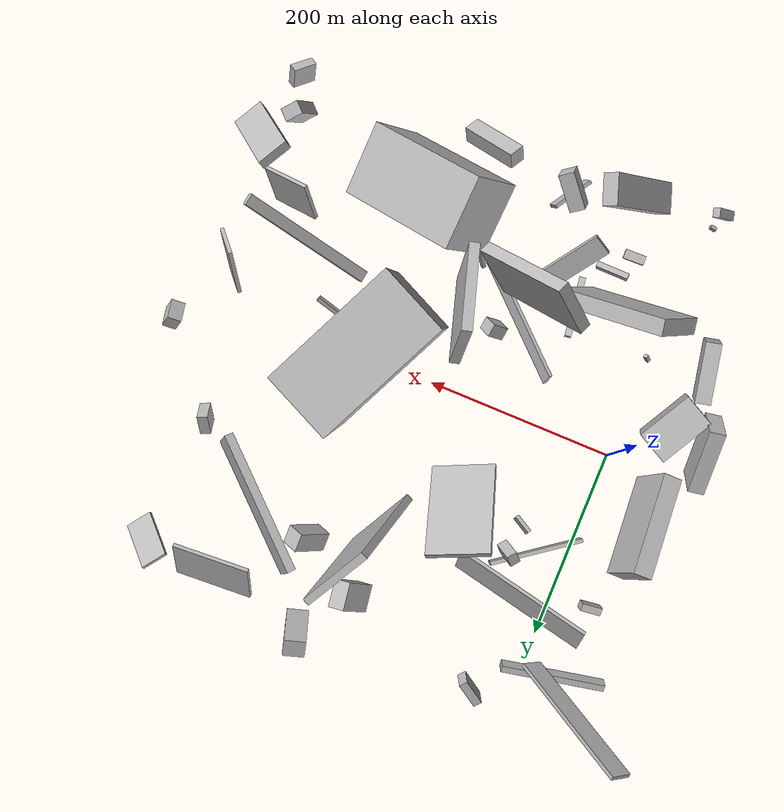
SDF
<sdf version="1.6">
 <world name="default">
  <scene>
   <sky><clouds><speed>12</speed></clouds></sky>
   <ambient>0.4 0.4 0.4 1</ambient>
   <background>0.7 0.7 0.7 1</background>
   <shadows>1</shadows>
  </scene>
  <gravity>0 0 -9.8066</gravity>
  <magnetic_field>6e-06 2.3e-05 -4.2e-05</magnetic_field>
  <physics default="0" name="default_physics" type="ode">
   <ode>
    <solver>
     <type>quick</type>
     <iters>10</iters>
     <sor>1.0</sor>
     <use_dynamic_moi_rescaling>0</use_dynamic_moi_rescaling>
    </solver>
    <constraints>
     <cfm>0</cfm>
     <erp>0.2</erp>
     <contact_max_correcting_vel>100</contact_max_correcting_vel>
     <contact_surface_layer>0.001</contact_surface_layer>
    </constraints>
   </ode>
   <max_step_size>0.004</max_step_size>
   <real_time_factor>1</real_time_factor>
   <real_time_update_rate>250</real_time_update_rate>
  </physics>
  <light name="sun" type="directional">
   <pose>0 0 10 0 0 0</pose>
   <diffuse>0.8 0.8 0.8 1</diffuse>
   <specular>0.2 0.2 0.2 1</specular>
   <attenuation>
    <range>1000</range>
    <constant>0.9</constant>
    <linear>0.01</linear>
    <quadratic>0.001</quadratic>
   </attenuation>
   <direction>-0.5 0.1 -0.9</direction>
  </light>
  <model name="building_1">
   <static>0</static>
   <pose>302.0085047325229 73.64471784472605 92.19495553369943 1.4220249309395845 -0.08326991890142922 -0.4318725946527104</pose>
   <link name="link">
    <gravity>0</gravity>
    <pose>0 0 75.0 0 0 0</pose>
    <collision name="collision"><geometry><box><size>77 150 150</size></box></geometry></collision>
    <visual name="visual">
     <cast_shadows>0</cast_shadows>
     <geometry><box><size>77 150 150</size></box></geometry>
     <material>
      <script>
       <uri>model://HANNAS_wall/materials/scripts</uri>
       <uri>model://HANNAS_wall/materials/textures</uri>
       <name>vrc/HANNAS_wall</name>
      </script>
     </material>
    </visual>
   </link>
  </model>
  <model name="building_2">
   <static>0</static>
   <pose>331.1206230583897 -183.19159410778926 73.16768751799763 1.1753713981039553 -0.3586616511335318 -1.6317193070233211</pose>
   <link name="link">
    <gravity>0</gravity>
    <pose>0 0 64.5 0 0 0</pose>
    <collision name="collision"><geometry><box><size>76 80 129</size></box></geometry></collision>
    <visual name="visual">
     <cast_shadows>0</cast_shadows>
     <geometry><box><size>76 80 129</size></box></geometry>
     <material>
      <script>
       <uri>model://HANNAS_wall/materials/scripts</uri>
       <uri>model://HANNAS_wall/materials/textures</uri>
       <name>vrc/HANNAS_wall</name>
      </script>
     </material>
    </visual>
   </link>
  </model>
  <model name="building_3">
   <static>0</static>
   <pose>140.0465770768938 -235.6713289271537 46.06153299173626 -2.6019187979689953 -0.41288702664448484 -2.6002957104572415</pose>
   <link name="link">
    <gravity>0</gravity>
    <pose>0 0 9.5 0 0 0</pose>
    <collision name="collision"><geometry><box><size>17 42 19</size></box></geometry></collision>
    <visual name="visual">
     <cast_shadows>0</cast_shadows>
     <geometry><box><size>17 42 19</size></box></geometry>
     <material>
      <script>
       <uri>model://HANNAS_wall/materials/scripts</uri>
       <uri>model://HANNAS_wall/materials/textures</uri>
       <name>vrc/HANNAS_wall</name>
      </script>
     </material>
    </visual>
   </link>
  </model>
  <model name="building_4">
   <static>0</static>
   <pose>71.08755559894479 -240.74143351958247 60.22915338683214 1.3524876164322908 0.6252562411061563 0.22852046639046222</pose>
   <link name="link">
    <gravity>0</gravity>
    <pose>0 0 16.5 0 0 0</pose>
    <collision name="collision"><geometry><box><size>17 117 33</size></box></geometry></collision>
    <visual name="visual">
     <cast_shadows>0</cast_shadows>
     <geometry><box><size>17 117 33</size></box></geometry>
     <material>
      <script>
       <uri>model://HANNAS_wall/materials/scripts</uri>
       <uri>model://HANNAS_wall/materials/textures</uri>
       <name>vrc/HANNAS_wall</name>
      </script>
     </material>
    </visual>
   </link>
  </model>
  <model name="building_5">
   <static>0</static>
   <pose>262.6180597104783 -261.9857116148526 31.462453878581535 1.0831043489230274 0.3157141921633257 -2.0350317143255765</pose>
   <link name="link">
    <gravity>0</gravity>
    <pose>0 0 33.0 0 0 0</pose>
    <collision name="collision"><geometry><box><size>18 18 66</size></box></geometry></collision>
    <visual name="visual">
     <cast_shadows>0</cast_shadows>
     <geometry><box><size>18 18 66</size></box></geometry>
     <material>
      <script>
       <uri>model://HANNAS_wall/materials/scripts</uri>
       <uri>model://HANNAS_wall/materials/textures</uri>
       <name>vrc/HANNAS_wall</name>
      </script>
     </material>
    </visual>
   </link>
  </model>
  <model name="building_6">
   <static>0</static>
   <pose>202.50433510016433 183.91158466079875 84.82505758751049 1.7072965101185058 -0.5105111652658036 -2.076724133029178</pose>
   <link name="link">
    <gravity>0</gravity>
    <pose>0 0 4.0 0 0 0</pose>
    <collision name="collision"><geometry><box><size>84 136 8</size></box></geometry></collision>
    <visual name="visual">
     <cast_shadows>0</cast_shadows>
     <geometry><box><size>84 136 8</size></box></geometry>
     <material>
      <script>
       <uri>model://HANNAS_wall/materials/scripts</uri>
       <uri>model://HANNAS_wall/materials/textures</uri>
       <name>vrc/HANNAS_wall</name>
      </script>
     </material>
    </visual>
   </link>
  </model>
  <model name="building_7">
   <static>0</static>
   <pose>-66.22780123052709 56.68940814717254 48.26146781146508 1.3044163217693059 -0.1340033126395133 1.6277086153309868</pose>
   <link name="link">
    <gravity>0</gravity>
    <pose>0 0 10.0 0 0 0</pose>
    <collision name="collision"><geometry><box><size>105 62 20</size></box></geometry></collision>
    <visual name="visual">
     <cast_shadows>0</cast_shadows>
     <geometry><box><size>105 62 20</size></box></geometry>
     <material>
      <script>
       <uri>model://HANNAS_wall/materials/scripts</uri>
       <uri>model://HANNAS_wall/materials/textures</uri>
       <name>vrc/HANNAS_wall</name>
      </script>
     </material>
    </visual>
   </link>
  </model>
  <model name="building_8">
   <static>0</static>
   <pose>-0.27498247168232837 225.2909093129094 74.03816274416084 -0.6343716601421556 -0.6412598416827917 0.3945901303594192</pose>
   <link name="link">
    <gravity>0</gravity>
    <pose>0 0 75.0 0 0 0</pose>
    <collision name="collision"><geometry><box><size>22 4 150</size></box></geometry></collision>
    <visual name="visual">
     <cast_shadows>0</cast_shadows>
     <geometry><box><size>22 4 150</size></box></geometry>
     <material>
      <script>
       <uri>model://HANNAS_wall/materials/scripts</uri>
       <uri>model://HANNAS_wall/materials/textures</uri>
       <name>vrc/HANNAS_wall</name>
      </script>
     </material>
    </visual>
   </link>
  </model>
  <model name="building_9">
   <static>0</static>
   <pose>29.915209592952607 -143.04062814730884 74.10012162083979 0.7076691817759835 0.34037502199734077 1.7886612600110365</pose>
   <link name="link">
    <gravity>0</gravity>
    <pose>0 0 28.5 0 0 0</pose>
    <collision name="collision"><geometry><box><size>17 129 57</size></box></geometry></collision>
    <visual name="visual">
     <cast_shadows>0</cast_shadows>
     <geometry><box><size>17 129 57</size></box></geometry>
     <material>
      <script>
       <uri>model://HANNAS_wall/materials/scripts</uri>
       <uri>model://HANNAS_wall/materials/textures</uri>
       <name>vrc/HANNAS_wall</name>
      </script>
     </material>
    </visual>
   </link>
  </model>
  <model name="building_10">
   <static>0</static>
   <pose>-33.27877014397855 -58.45661163663731 43.81629415874043 1.61069381494754 -0.21980992370030825 -2.0643343777027194</pose>
   <link name="link">
    <gravity>0</gravity>
    <pose>0 0 18.0 0 0 0</pose>
    <collision name="collision"><geometry><box><size>61 51 36</size></box></geometry></collision>
    <visual name="visual">
     <cast_shadows>0</cast_shadows>
     <geometry><box><size>61 51 36</size></box></geometry>
     <material>
      <script>
       <uri>model://HANNAS_wall/materials/scripts</uri>
       <uri>model://HANNAS_wall/materials/textures</uri>
       <name>vrc/HANNAS_wall</name>
      </script>
     </material>
    </visual>
   </link>
  </model>
  <model name="building_11">
   <static>0</static>
   <pose>65.62711317595094 129.92454762689636 31.286551709036655 0.11061758045968385 -0.6574989123066239 -0.730484986419379</pose>
   <link name="link">
    <gravity>0</gravity>
    <pose>0 0 12.5 0 0 0</pose>
    <collision name="collision"><geometry><box><size>13 11 25</size></box></geometry></collision>
    <visual name="visual">
     <cast_shadows>0</cast_shadows>
     <geometry><box><size>13 11 25</size></box></geometry>
     <material>
      <script>
       <uri>model://HANNAS_wall/materials/scripts</uri>
       <uri>model://HANNAS_wall/materials/textures</uri>
       <name>vrc/HANNAS_wall</name>
      </script>
     </material>
    </visual>
   </link>
  </model>
  <model name="building_12">
   <static>0</static>
   <pose>-56.28946938864842 -119.20658319414443 42.85178921686029 0.2585580497076385 -0.11751508889431012 -2.9339434200679793</pose>
   <link name="link">
    <gravity>0</gravity>
    <pose>0 0 24.0 0 0 0</pose>
    <collision name="collision"><geometry><box><size>16 62 48</size></box></geometry></collision>
    <visual name="visual">
     <cast_shadows>0</cast_shadows>
     <geometry><box><size>16 62 48</size></box></geometry>
     <material>
      <script>
       <uri>model://HANNAS_wall/materials/scripts</uri>
       <uri>model://HANNAS_wall/materials/textures</uri>
       <name>vrc/HANNAS_wall</name>
      </script>
     </material>
    </visual>
   </link>
  </model>
  <model name="building_13">
   <static>0</static>
   <pose>55.798222569542105 103.07683851958673 10.163452034364166 1.7500221330881687 0.03622365590597642 -0.5165902577120266</pose>
   <link name="link">
    <gravity>0</gravity>
    <pose>0 0 2.0 0 0 0</pose>
    <collision name="collision"><geometry><box><size>21 12 4</size></box></geometry></collision>
    <visual name="visual">
     <cast_shadows>0</cast_shadows>
     <geometry><box><size>21 12 4</size></box></geometry>
     <material>
      <script>
       <uri>model://HANNAS_wall/materials/scripts</uri>
       <uri>model://HANNAS_wall/materials/textures</uri>
       <name>vrc/HANNAS_wall</name>
      </script>
     </material>
    </visual>
   </link>
  </model>
  <model name="building_14">
   <static>0</static>
   <pose>-52.665731633799844 152.16107419272345 10.524424810921701 -1.3537388066210798 -0.23231966222661185 -1.5004715322351037</pose>
   <link name="link">
    <gravity>0</gravity>
    <pose>0 0 11.0 0 0 0</pose>
    <collision name="collision"><geometry><box><size>8 12 22</size></box></geometry></collision>
    <visual name="visual">
     <cast_shadows>0</cast_shadows>
     <geometry><box><size>8 12 22</size></box></geometry>
     <material>
      <script>
       <uri>model://HANNAS_wall/materials/scripts</uri>
       <uri>model://HANNAS_wall/materials/textures</uri>
       <name>vrc/HANNAS_wall</name>
      </script>
     </material>
    </visual>
   </link>
  </model>
  <model name="building_15">
   <static>0</static>
   <pose>449.1579964886661 -43.96308069781652 39.49993988809927 0.29218997204261693 -1.1136521875707266 -1.1310883605227404</pose>
   <link name="link">
    <gravity>0</gravity>
    <pose>0 0 17.0 0 0 0</pose>
    <collision name="collision"><geometry><box><size>67 4 34</size></box></geometry></collision>
    <visual name="visual">
     <cast_shadows>0</cast_shadows>
     <geometry><box><size>67 4 34</size></box></geometry>
     <material>
      <script>
       <uri>model://HANNAS_wall/materials/scripts</uri>
       <uri>model://HANNAS_wall/materials/textures</uri>
       <name>vrc/HANNAS_wall</name>
      </script>
     </material>
    </visual>
   </link>
  </model>
  <model name="building_16">
   <static>0</static>
   <pose>134.18623501680423 70.12370800791054 37.349154499265175 1.0780957717991861 -0.21345699525793507 -2.717517768244754</pose>
   <link name="link">
    <gravity>0</gravity>
    <pose>0 0 50.5 0 0 0</pose>
    <collision name="collision"><geometry><box><size>66 7 101</size></box></geometry></collision>
    <visual name="visual">
     <cast_shadows>0</cast_shadows>
     <geometry><box><size>66 7 101</size></box></geometry>
     <material>
      <script>
       <uri>model://HANNAS_wall/materials/scripts</uri>
       <uri>model://HANNAS_wall/materials/textures</uri>
       <name>vrc/HANNAS_wall</name>
      </script>
     </material>
    </visual>
   </link>
  </model>
  <model name="building_17">
   <static>0</static>
   <pose>-31.363401427993537 234.82673134152938 19.169347099659447 0.2791684102893092 1.090652431694683 -1.12748576464778</pose>
   <link name="link">
    <gravity>0</gravity>
    <pose>0 0 3.5 0 0 0</pose>
    <collision name="collision"><geometry><box><size>12 109 7</size></box></geometry></collision>
    <visual name="visual">
     <cast_shadows>0</cast_shadows>
     <geometry><box><size>12 109 7</size></box></geometry>
     <material>
      <script>
       <uri>model://HANNAS_wall/materials/scripts</uri>
       <uri>model://HANNAS_wall/materials/textures</uri>
       <name>vrc/HANNAS_wall</name>
      </script>
     </material>
    </visual>
   </link>
  </model>
  <model name="building_18">
   <static>0</static>
   <pose>402.88953751377477 119.51678023450245 24.571742520509947 -0.08262843989753081 -0.8017013568366568 -1.0970612682552143</pose>
   <link name="link">
    <gravity>0</gravity>
    <pose>0 0 11.0 0 0 0</pose>
    <collision name="collision"><geometry><box><size>23 11 22</size></box></geometry></collision>
    <visual name="visual">
     <cast_shadows>0</cast_shadows>
     <geometry><box><size>23 11 22</size></box></geometry>
     <material>
      <script>
       <uri>model://HANNAS_wall/materials/scripts</uri>
       <uri>model://HANNAS_wall/materials/textures</uri>
       <name>vrc/HANNAS_wall</name>
      </script>
     </material>
    </visual>
   </link>
  </model>
  <model name="building_19">
   <static>0</static>
   <pose>288.41884156823573 -21.929649810828202 23.762334465255314 0.46753854795851846 -0.6798691044866829 -2.100632418346999</pose>
   <link name="link">
    <gravity>0</gravity>
    <pose>0 0 2.0 0 0 0</pose>
    <collision name="collision"><geometry><box><size>5 113 4</size></box></geometry></collision>
    <visual name="visual">
     <cast_shadows>0</cast_shadows>
     <geometry><box><size>5 113 4</size></box></geometry>
     <material>
      <script>
       <uri>model://HANNAS_wall/materials/scripts</uri>
       <uri>model://HANNAS_wall/materials/textures</uri>
       <name>vrc/HANNAS_wall</name>
      </script>
     </material>
    </visual>
   </link>
  </model>
  <model name="building_20">
   <static>0</static>
   <pose>202.50885493256953 -141.15066702993192 41.96960594868678 -2.8058699301604575 -0.8500526894343066 -0.8769065333030539</pose>
   <link name="link">
    <gravity>0</gravity>
    <pose>0 0 2.0 0 0 0</pose>
    <collision name="collision"><geometry><box><size>39 4 4</size></box></geometry></collision>
    <visual name="visual">
     <cast_shadows>0</cast_shadows>
     <geometry><box><size>39 4 4</size></box></geometry>
     <material>
      <script>
       <uri>model://HANNAS_wall/materials/scripts</uri>
       <uri>model://HANNAS_wall/materials/textures</uri>
       <name>vrc/HANNAS_wall</name>
      </script>
     </material>
    </visual>
   </link>
  </model>
  <model name="building_21">
   <static>0</static>
   <pose>30.162406658068434 170.62855793078018 28.70403910196444 -1.0766429944001712 0.16708917607096574 -0.1968084434326626</pose>
   <link name="link">
    <gravity>0</gravity>
    <pose>0 0 2.0 0 0 0</pose>
    <collision name="collision"><geometry><box><size>150 34 4</size></box></geometry></collision>
    <visual name="visual">
     <cast_shadows>0</cast_shadows>
     <geometry><box><size>150 34 4</size></box></geometry>
     <material>
      <script>
       <uri>model://HANNAS_wall/materials/scripts</uri>
       <uri>model://HANNAS_wall/materials/textures</uri>
       <name>vrc/HANNAS_wall</name>
      </script>
     </material>
    </visual>
   </link>
  </model>
  <model name="building_22">
   <static>0</static>
   <pose>425.59198670692854 -208.31650706958763 65.18179505389405 2.8516137208911125 -1.1515419608229045 1.0739063840227818</pose>
   <link name="link">
    <gravity>0</gravity>
    <pose>0 0 10.0 0 0 0</pose>
    <collision name="collision"><geometry><box><size>40 14 20</size></box></geometry></collision>
    <visual name="visual">
     <cast_shadows>0</cast_shadows>
     <geometry><box><size>40 14 20</size></box></geometry>
     <material>
      <script>
       <uri>model://HANNAS_wall/materials/scripts</uri>
       <uri>model://HANNAS_wall/materials/textures</uri>
       <name>vrc/HANNAS_wall</name>
      </script>
     </material>
    </visual>
   </link>
  </model>
  <model name="building_23">
   <static>0</static>
   <pose>210.42220226618255 -121.40346447396959 76.06657940453756 1.3090113884073626 0.09473539298950208 -2.86755300576992</pose>
   <link name="link">
    <gravity>0</gravity>
    <pose>0 0 47.5 0 0 0</pose>
    <collision name="collision"><geometry><box><size>11 86 95</size></box></geometry></collision>
    <visual name="visual">
     <cast_shadows>0</cast_shadows>
     <geometry><box><size>11 86 95</size></box></geometry>
     <material>
      <script>
       <uri>model://HANNAS_wall/materials/scripts</uri>
       <uri>model://HANNAS_wall/materials/textures</uri>
       <name>vrc/HANNAS_wall</name>
      </script>
     </material>
    </visual>
   </link>
  </model>
  <model name="building_24">
   <static>0</static>
   <pose>51.45273706973612 -207.6688647086735 6.97477506496127 -3.0561305479755565 0.05299263759679165 -3.0996915312289497</pose>
   <link name="link">
    <gravity>0</gravity>
    <pose>0 0 2.0 0 0 0</pose>
    <collision name="collision"><geometry><box><size>23 10 4</size></box></geometry></collision>
    <visual name="visual">
     <cast_shadows>0</cast_shadows>
     <geometry><box><size>23 10 4</size></box></geometry>
     <material>
      <script>
       <uri>model://HANNAS_wall/materials/scripts</uri>
       <uri>model://HANNAS_wall/materials/textures</uri>
       <name>vrc/HANNAS_wall</name>
      </script>
     </material>
    </visual>
   </link>
  </model>
  <model name="building_25">
   <static>0</static>
   <pose>485.1413914249845 39.75306080984977 18.97820617407798 2.3969474029813806 -1.0241384744685418 -2.2058137221330445</pose>
   <link name="link">
    <gravity>0</gravity>
    <pose>0 0 7.5 0 0 0</pose>
    <collision name="collision"><geometry><box><size>21 22 15</size></box></geometry></collision>
    <visual name="visual">
     <cast_shadows>0</cast_shadows>
     <geometry><box><size>21 22 15</size></box></geometry>
     <material>
      <script>
       <uri>model://HANNAS_wall/materials/scripts</uri>
       <uri>model://HANNAS_wall/materials/textures</uri>
       <name>vrc/HANNAS_wall</name>
      </script>
     </material>
    </visual>
   </link>
  </model>
  <model name="building_26">
   <static>0</static>
   <pose>339.2094852511243 -209.9906624384122 5.824889149876017 -2.48029604170784 -1.1933694556625336 0.4089437017943164</pose>
   <link name="link">
    <gravity>0</gravity>
    <pose>0 0 2.0 0 0 0</pose>
    <collision name="collision"><geometry><box><size>4 4 4</size></box></geometry></collision>
    <visual name="visual">
     <cast_shadows>0</cast_shadows>
     <geometry><box><size>4 4 4</size></box></geometry>
     <material>
      <script>
       <uri>model://HANNAS_wall/materials/scripts</uri>
       <uri>model://HANNAS_wall/materials/textures</uri>
       <name>vrc/HANNAS_wall</name>
      </script>
     </material>
    </visual>
   </link>
  </model>
  <model name="building_27">
   <static>0</static>
   <pose>-77.95885747695311 -34.372059325366614 49.12206391472111 1.6322387999790602 -0.5868315868479279 -1.4319165169934471</pose>
   <link name="link">
    <gravity>0</gravity>
    <pose>0 0 8.5 0 0 0</pose>
    <collision name="collision"><geometry><box><size>72 40 17</size></box></geometry></collision>
    <visual name="visual">
     <cast_shadows>0</cast_shadows>
     <geometry><box><size>72 40 17</size></box></geometry>
     <material>
      <script>
       <uri>model://HANNAS_wall/materials/scripts</uri>
       <uri>model://HANNAS_wall/materials/textures</uri>
       <name>vrc/HANNAS_wall</name>
      </script>
     </material>
    </visual>
   </link>
  </model>
  <model name="building_28">
   <static>0</static>
   <pose>179.80575027775566 231.92624696544507 39.08990417261532 -0.4067205093907295 -0.002340373005034353 -1.4183465356938034</pose>
   <link name="link">
    <gravity>0</gravity>
    <pose>0 0 25.5 0 0 0</pose>
    <collision name="collision"><geometry><box><size>28 17 51</size></box></geometry></collision>
    <visual name="visual">
     <cast_shadows>0</cast_shadows>
     <geometry><box><size>28 17 51</size></box></geometry>
     <material>
      <script>
       <uri>model://HANNAS_wall/materials/scripts</uri>
       <uri>model://HANNAS_wall/materials/textures</uri>
       <name>vrc/HANNAS_wall</name>
      </script>
     </material>
    </visual>
   </link>
  </model>
  <model name="building_29">
   <static>0</static>
   <pose>457.8523698227177 -166.2455387704828 47.03884314051268 0.6773000332687875 0.15696068505324767 1.0351465515563902</pose>
   <link name="link">
    <gravity>0</gravity>
    <pose>0 0 5.0 0 0 0</pose>
    <collision name="collision"><geometry><box><size>35 87 10</size></box></geometry></collision>
    <visual name="visual">
     <cast_shadows>0</cast_shadows>
     <geometry><box><size>35 87 10</size></box></geometry>
     <material>
      <script>
       <uri>model://HANNAS_wall/materials/scripts</uri>
       <uri>model://HANNAS_wall/materials/textures</uri>
       <name>vrc/HANNAS_wall</name>
      </script>
     </material>
    </visual>
   </link>
  </model>
  <model name="building_30">
   <static>0</static>
   <pose>120.72948693208504 -105.9280368667391 84.48511537467319 -0.1597750710823422 -0.7341184545269464 2.860088771404914</pose>
   <link name="link">
    <gravity>0</gravity>
    <pose>0 0 31.0 0 0 0</pose>
    <collision name="collision"><geometry><box><size>121 13 62</size></box></geometry></collision>
    <visual name="visual">
     <cast_shadows>0</cast_shadows>
     <geometry><box><size>121 13 62</size></box></geometry>
     <material>
      <script>
       <uri>model://HANNAS_wall/materials/scripts</uri>
       <uri>model://HANNAS_wall/materials/textures</uri>
       <name>vrc/HANNAS_wall</name>
      </script>
     </material>
    </visual>
   </link>
  </model>
  <model name="building_31">
   <static>0</static>
   <pose>72.11039349552064 -166.17150181878327 72.28810936175756 1.6692867786974255 0.16872086551515636 -0.04893063348347409</pose>
   <link name="link">
    <gravity>0</gravity>
    <pose>0 0 3.0 0 0 0</pose>
    <collision name="collision"><geometry><box><size>34 7 6</size></box></geometry></collision>
    <visual name="visual">
     <cast_shadows>0</cast_shadows>
     <geometry><box><size>34 7 6</size></box></geometry>
     <material>
      <script>
       <uri>model://HANNAS_wall/materials/scripts</uri>
       <uri>model://HANNAS_wall/materials/textures</uri>
       <name>vrc/HANNAS_wall</name>
      </script>
     </material>
    </visual>
   </link>
  </model>
  <model name="building_32">
   <static>0</static>
   <pose>327.4465639354862 265.8656763173399 60.580176953402 2.193865898094329 0.17788534302327988 0.08237287311906871</pose>
   <link name="link">
    <gravity>0</gravity>
    <pose>0 0 2.0 0 0 0</pose>
    <collision name="collision"><geometry><box><size>82 45 4</size></box></geometry></collision>
    <visual name="visual">
     <cast_shadows>0</cast_shadows>
     <geometry><box><size>82 45 4</size></box></geometry>
     <material>
      <script>
       <uri>model://HANNAS_wall/materials/scripts</uri>
       <uri>model://HANNAS_wall/materials/textures</uri>
       <name>vrc/HANNAS_wall</name>
      </script>
     </material>
    </visual>
   </link>
  </model>
  <model name="building_33">
   <static>0</static>
   <pose>86.79772775993538 -132.43073573538024 13.700816103105684 -1.9167547054559488 -1.3535270314295058 -1.0942472041579452</pose>
   <link name="link">
    <gravity>0</gravity>
    <pose>0 0 3.5 0 0 0</pose>
    <collision name="collision"><geometry><box><size>4 69 7</size></box></geometry></collision>
    <visual name="visual">
     <cast_shadows>0</cast_shadows>
     <geometry><box><size>4 69 7</size></box></geometry>
     <material>
      <script>
       <uri>model://HANNAS_wall/materials/scripts</uri>
       <uri>model://HANNAS_wall/materials/textures</uri>
       <name>vrc/HANNAS_wall</name>
      </script>
     </material>
    </visual>
   </link>
  </model>
  <model name="building_34">
   <static>0</static>
   <pose>112.31489624542635 -170.8329870892074 29.861859736399225 0.5027234981206379 0.43167987368393373 2.7058113689259047</pose>
   <link name="link">
    <gravity>0</gravity>
    <pose>0 0 3.0 0 0 0</pose>
    <collision name="collision"><geometry><box><size>23 79 6</size></box></geometry></collision>
    <visual name="visual">
     <cast_shadows>0</cast_shadows>
     <geometry><box><size>23 79 6</size></box></geometry>
     <material>
      <script>
       <uri>model://HANNAS_wall/materials/scripts</uri>
       <uri>model://HANNAS_wall/materials/textures</uri>
       <name>vrc/HANNAS_wall</name>
      </script>
     </material>
    </visual>
   </link>
  </model>
  <model name="building_35">
   <static>0</static>
   <pose>32.77206813275073 119.84670856003103 12.044402042519174 -1.6948629894636849 -0.09462318195364876 0.6337659175895975</pose>
   <link name="link">
    <gravity>0</gravity>
    <pose>0 0 2.0 0 0 0</pose>
    <collision name="collision"><geometry><box><size>100 11 4</size></box></geometry></collision>
    <visual name="visual">
     <cast_shadows>0</cast_shadows>
     <geometry><box><size>100 11 4</size></box></geometry>
     <material>
      <script>
       <uri>model://HANNAS_wall/materials/scripts</uri>
       <uri>model://HANNAS_wall/materials/textures</uri>
       <name>vrc/HANNAS_wall</name>
      </script>
     </material>
    </visual>
   </link>
  </model>
  <model name="building_36">
   <static>0</static>
   <pose>-0.3797760327507912 -106.57695944160457 25.38741305104773 0.05822831604766783 0.5320103400186919 -0.2851499814831772</pose>
   <link name="link">
    <gravity>0</gravity>
    <pose>0 0 5.0 0 0 0</pose>
    <collision name="collision"><geometry><box><size>4 4 10</size></box></geometry></collision>
    <visual name="visual">
     <cast_shadows>0</cast_shadows>
     <geometry><box><size>4 4 10</size></box></geometry>
     <material>
      <script>
       <uri>model://HANNAS_wall/materials/scripts</uri>
       <uri>model://HANNAS_wall/materials/textures</uri>
       <name>vrc/HANNAS_wall</name>
      </script>
     </material>
    </visual>
   </link>
  </model>
  <model name="building_37">
   <static>0</static>
   <pose>433.86249925000925 -126.59477870136305 38.8675377213887 1.0376656555356873 0.31692997283398816 -1.930490389979068</pose>
   <link name="link">
    <gravity>0</gravity>
    <pose>0 0 30.0 0 0 0</pose>
    <collision name="collision"><geometry><box><size>4 44 60</size></box></geometry></collision>
    <visual name="visual">
     <cast_shadows>0</cast_shadows>
     <geometry><box><size>4 44 60</size></box></geometry>
     <material>
      <script>
       <uri>model://HANNAS_wall/materials/scripts</uri>
       <uri>model://HANNAS_wall/materials/textures</uri>
       <name>vrc/HANNAS_wall</name>
      </script>
     </material>
    </visual>
   </link>
  </model>
  <model name="building_38">
   <static>0</static>
   <pose>317.8830777787009 190.51869034550992 30.222883612278725 -0.2630676433773954 0.050538621458952764 2.4028511802755874</pose>
   <link name="link">
    <gravity>0</gravity>
    <pose>0 0 23.0 0 0 0</pose>
    <collision name="collision"><geometry><box><size>150 9 46</size></box></geometry></collision>
    <visual name="visual">
     <cast_shadows>0</cast_shadows>
     <geometry><box><size>150 9 46</size></box></geometry>
     <material>
      <script>
       <uri>model://HANNAS_wall/materials/scripts</uri>
       <uri>model://HANNAS_wall/materials/textures</uri>
       <name>vrc/HANNAS_wall</name>
      </script>
     </material>
    </visual>
   </link>
  </model>
  <model name="building_39">
   <static>0</static>
   <pose>166.34885531813683 -79.6393808940698 17.255766430957205 -0.5233861056555072 -0.6676466669130993 0.22270491226417385</pose>
   <link name="link">
    <gravity>0</gravity>
    <pose>0 0 9.0 0 0 0</pose>
    <collision name="collision"><geometry><box><size>19 14 18</size></box></geometry></collision>
    <visual name="visual">
     <cast_shadows>0</cast_shadows>
     <geometry><box><size>19 14 18</size></box></geometry>
     <material>
      <script>
       <uri>model://HANNAS_wall/materials/scripts</uri>
       <uri>model://HANNAS_wall/materials/textures</uri>
       <name>vrc/HANNAS_wall</name>
      </script>
     </material>
    </visual>
   </link>
  </model>
  <model name="building_40">
   <static>0</static>
   <pose>424.2319731869975 249.79207539263103 16.27552383296881 -1.1059679589120035 0.12444777112699275 0.9342558174702256</pose>
   <link name="link">
    <gravity>0</gravity>
    <pose>0 0 26.5 0 0 0</pose>
    <collision name="collision"><geometry><box><size>28 4 53</size></box></geometry></collision>
    <visual name="visual">
     <cast_shadows>0</cast_shadows>
     <geometry><box><size>28 4 53</size></box></geometry>
     <material>
      <script>
       <uri>model://HANNAS_wall/materials/scripts</uri>
       <uri>model://HANNAS_wall/materials/textures</uri>
       <name>vrc/HANNAS_wall</name>
      </script>
     </material>
    </visual>
   </link>
  </model>
  <model name="building_41">
   <static>0</static>
   <pose>305.60865023102673 -70.19812309071364 48.7393566018793 -0.9697313424948509 -0.04080083178775283 -1.710008184410824</pose>
   <link name="link">
    <gravity>0</gravity>
    <pose>0 0 75.0 0 0 0</pose>
    <collision name="collision"><geometry><box><size>12 7 150</size></box></geometry></collision>
    <visual name="visual">
     <cast_shadows>0</cast_shadows>
     <geometry><box><size>12 7 150</size></box></geometry>
     <material>
      <script>
       <uri>model://HANNAS_wall/materials/scripts</uri>
       <uri>model://HANNAS_wall/materials/textures</uri>
       <name>vrc/HANNAS_wall</name>
      </script>
     </material>
    </visual>
   </link>
  </model>
  <model name="building_42">
   <static>0</static>
   <pose>128.5272303319497 -262.76661813558746 13.606647691413428 1.3696595127825277 -1.1355146153131237 2.788080637008802</pose>
   <link name="link">
    <gravity>0</gravity>
    <pose>0 0 23.5 0 0 0</pose>
    <collision name="collision"><geometry><box><size>15 4 47</size></box></geometry></collision>
    <visual name="visual">
     <cast_shadows>0</cast_shadows>
     <geometry><box><size>15 4 47</size></box></geometry>
     <material>
      <script>
       <uri>model://HANNAS_wall/materials/scripts</uri>
       <uri>model://HANNAS_wall/materials/textures</uri>
       <name>vrc/HANNAS_wall</name>
      </script>
     </material>
    </visual>
   </link>
  </model>
  <model name="building_43">
   <static>0</static>
   <pose>45.07883145096514 271.89398575200363 20.369709636210832 -0.5113558149796019 0.198807558661172 0.8767900376184106</pose>
   <link name="link">
    <gravity>0</gravity>
    <pose>0 0 9.0 0 0 0</pose>
    <collision name="collision"><geometry><box><size>9 31 18</size></box></geometry></collision>
    <visual name="visual">
     <cast_shadows>0</cast_shadows>
     <geometry><box><size>9 31 18</size></box></geometry>
     <material>
      <script>
       <uri>model://HANNAS_wall/materials/scripts</uri>
       <uri>model://HANNAS_wall/materials/textures</uri>
       <name>vrc/HANNAS_wall</name>
      </script>
     </material>
    </visual>
   </link>
  </model>
  <model name="building_44">
   <static>0</static>
   <pose>232.19328398204934 275.82904201599297 39.953792297649045 0.13769235129411425 -0.6248216949809402 -1.3637647367267212</pose>
   <link name="link">
    <gravity>0</gravity>
    <pose>0 0 23.5 0 0 0</pose>
    <collision name="collision"><geometry><box><size>20 22 47</size></box></geometry></collision>
    <visual name="visual">
     <cast_shadows>0</cast_shadows>
     <geometry><box><size>20 22 47</size></box></geometry>
     <material>
      <script>
       <uri>model://HANNAS_wall/materials/scripts</uri>
       <uri>model://HANNAS_wall/materials/textures</uri>
       <name>vrc/HANNAS_wall</name>
      </script>
     </material>
    </visual>
   </link>
  </model>
  <model name="building_45">
   <static>0</static>
   <pose>-13.173587692152694 -267.69112443957977 7.240366647838138 0.3088722945328349 0.30188987022717595 -1.5343231529560124</pose>
   <link name="link">
    <gravity>0</gravity>
    <pose>0 0 2.0 0 0 0</pose>
    <collision name="collision"><geometry><box><size>4 7 4</size></box></geometry></collision>
    <visual name="visual">
     <cast_shadows>0</cast_shadows>
     <geometry><box><size>4 7 4</size></box></geometry>
     <material>
      <script>
       <uri>model://HANNAS_wall/materials/scripts</uri>
       <uri>model://HANNAS_wall/materials/textures</uri>
       <name>vrc/HANNAS_wall</name>
      </script>
     </material>
    </visual>
   </link>
  </model>
  <model name="building_46">
   <static>0</static>
   <pose>259.3450730030099 -214.00168467748784 17.900338022527098 2.067219010751499 0.5299118357681228 0.8439663451909424</pose>
   <link name="link">
    <gravity>0</gravity>
    <pose>0 0 13.0 0 0 0</pose>
    <collision name="collision"><geometry><box><size>9 4 26</size></box></geometry></collision>
    <visual name="visual">
     <cast_shadows>0</cast_shadows>
     <geometry><box><size>9 4 26</size></box></geometry>
     <material>
      <script>
       <uri>model://HANNAS_wall/materials/scripts</uri>
       <uri>model://HANNAS_wall/materials/textures</uri>
       <name>vrc/HANNAS_wall</name>
      </script>
     </material>
    </visual>
   </link>
  </model>
  <model name="building_47">
   <static>0</static>
   <pose>247.78372411356128 201.8049577390502 31.26685418449 2.592973642135577 -0.8374536982384763 0.4215394809977672</pose>
   <link name="link">
    <gravity>0</gravity>
    <pose>0 0 10.0 0 0 0</pose>
    <collision name="collision"><geometry><box><size>39 20 20</size></box></geometry></collision>
    <visual name="visual">
     <cast_shadows>0</cast_shadows>
     <geometry><box><size>39 20 20</size></box></geometry>
     <material>
      <script>
       <uri>model://HANNAS_wall/materials/scripts</uri>
       <uri>model://HANNAS_wall/materials/textures</uri>
       <name>vrc/HANNAS_wall</name>
      </script>
     </material>
    </visual>
   </link>
  </model>
  <model name="building_48">
   <static>0</static>
   <pose>447.20124584151404 -261.96397810865426 17.713360585778663 -0.7068964579756656 -1.0679550734612948 -1.4887789656045487</pose>
   <link name="link">
    <gravity>0</gravity>
    <pose>0 0 13.0 0 0 0</pose>
    <collision name="collision"><geometry><box><size>24 10 26</size></box></geometry></collision>
    <visual name="visual">
     <cast_shadows>0</cast_shadows>
     <geometry><box><size>24 10 26</size></box></geometry>
     <material>
      <script>
       <uri>model://HANNAS_wall/materials/scripts</uri>
       <uri>model://HANNAS_wall/materials/textures</uri>
       <name>vrc/HANNAS_wall</name>
      </script>
     </material>
    </visual>
   </link>
  </model>
  <model name="building_49">
   <static>0</static>
   <pose>-24.466409143350727 -284.0809154816343 20.824337022956488 0.5882083819928879 0.18190496134730202 1.8649632942293066</pose>
   <link name="link">
    <gravity>0</gravity>
    <pose>0 0 19.0 0 0 0</pose>
    <collision name="collision"><geometry><box><size>10 8 38</size></box></geometry></collision>
    <visual name="visual">
     <cast_shadows>0</cast_shadows>
     <geometry><box><size>10 8 38</size></box></geometry>
     <material>
      <script>
       <uri>model://HANNAS_wall/materials/scripts</uri>
       <uri>model://HANNAS_wall/materials/textures</uri>
       <name>vrc/HANNAS_wall</name>
      </script>
     </material>
    </visual>
   </link>
  </model>
  <model name="building_50">
   <static>0</static>
   <pose>88.64980029222355 -46.92247249872612 28.971321095401375 -2.0572949835046437 -1.0876067650504146 -1.9082051562646571</pose>
   <link name="link">
    <gravity>0</gravity>
    <pose>0 0 75.0 0 0 0</pose>
    <collision name="collision"><geometry><box><size>16 4 150</size></box></geometry></collision>
    <visual name="visual">
     <cast_shadows>0</cast_shadows>
     <geometry><box><size>16 4 150</size></box></geometry>
     <material>
      <script>
       <uri>model://HANNAS_wall/materials/scripts</uri>
       <uri>model://HANNAS_wall/materials/textures</uri>
       <name>vrc/HANNAS_wall</name>
      </script>
     </material>
    </visual>
   </link>
  </model>
 </world>
</sdf>
